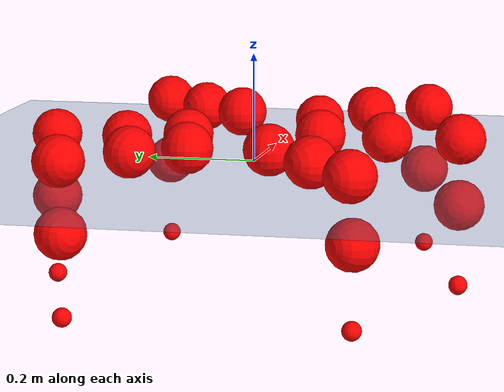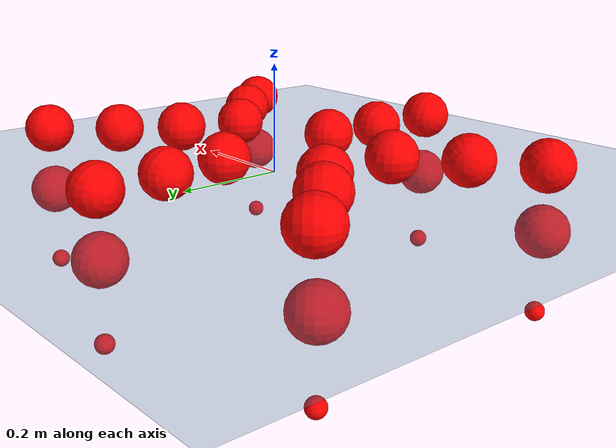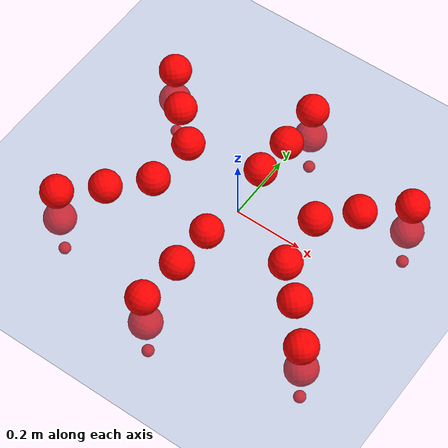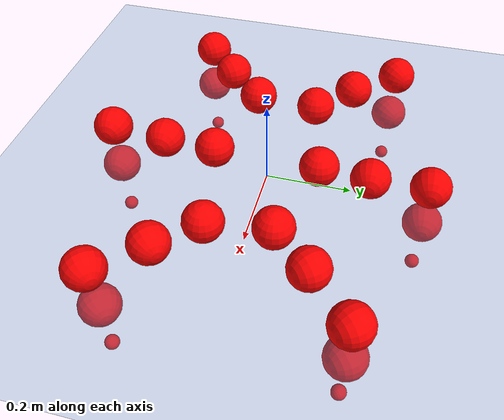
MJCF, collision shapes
<mujoco model="Golem">
  <compiler angle="radian" assetdir="assets" balanceinertia="true" inertiafromgeom="false"/>

  <option timestep="0.005" density="1.2" viscosity="2e-05"/>

  <size nkey="1"/>

  <visual>
    <quality shadowsize="8192"/>
    <map shadowclip="0.5"/>
  </visual>

  <default>
    <default class="/">
      <joint armature="0.01" damping="0.01" frictionloss="0.01"/>
      <geom contype="0" conaffinity="0" group="1" solref="-1000 -80"/>
      <site size="0.01 0.005 0.005" group="5"/>
      <general forcelimited="true" biastype="affine" gainprm="25" biasprm="0 -25 -0.5"/>
      <default class="visual">
        <geom type="mesh" group="2"/>
      </default>
      <default class="collision">
        <geom group="3"/>
      </default>
      <default class="foot">
        <geom size="0.01 0 0" condim="6" group="4" priority="1" solimp="0.015 1 0.01"/>
      </default>
      <default class="reward_collision_sphere">
        <geom group="5" rgba="1 0 0 1"/>
      </default>
    </default>
  </default>

  <asset>
    <texture type="skybox" colorspace="auto" name="//unnamed_texture_0" builtin="gradient" rgb1="0.95 0.95 0.95" rgb2="0.95 0.95 0.95" width="100" height="600"/>
    <texture type="2d" colorspace="auto" name="texplane" builtin="checker" rgb1="0.345 0.575 0.748" rgb2="0.345 0.575 0.748" markrgb="1 1 1" width="512" height="512"/>
    <material name="MatPlane" class="/" texture="texplane" texuniform="true" texrepeat="2 2" specular="0.9"/>
    <mesh name="body" class="/" file="body.stl" scale="0.001 0.001 0.001"/>
    <mesh name="coxa" class="/" file="coxa.stl" scale="0.001 0.001 0.001"/>
    <mesh name="femur" class="/" file="femur.stl" scale="0.001 0.001 0.001"/>
    <mesh name="tibia" class="/" file="tibia.stl" scale="0.001 0.001 0.001"/>
    <mesh name="tarsus" class="/" file="tarsus.stl" scale="0.001 0.001 0.001"/>
  </asset>

  <worldbody>
    <geom name="floor" class="/" size="100 100 0.125" type="plane" group="0" material="MatPlane"/>
    <light name="toplight_shadow" class="/" pos="0 0 5" dir="0.0990148 0.0990148 -0.990148" type="directional" ambient="0.04 0.04 0.04" diffuse="0.55 0.55 0.55" specular="0.12 0.12 0.12"/>
    <light name="toplight_fill" class="/" pos="0 0 5" dir="0.0990148 0.0990148 -0.990148" type="directional" castshadow="false" ambient="0.04 0.04 0.04" diffuse="0.3 0.3 0.3" specular="0.08 0.08 0.08"/>
    <body name="trunk" pos="-0.00666418 -0.00187771 -0.0012857" quat="1 -1.68801e-05 -1.09814e-06 -3.66667e-05">
      <inertial pos="0.00150999 0.00183184 -0.004863" quat="0.999976 0.00539714 -0.00400519 -0.00149467" mass="6.18176" diaginertia="0.0562073 0.0336455 0.00469702"/>
      <joint name="//unnamed_joint_0" type="free"/>
      <geom name="//unnamed_geom_1" class="/" pos="0 0 0.0549253" quat="1 0 0 0" type="mesh" rgba="0.9 0.9 0.9 1" mesh="body"/>
      <site name="imu" class="/" pos="0.151257 -0.026855 0.0917674" size="0.0116809"/>
      <camera name="track" class="/" pos="0 -2.5183 0" quat="0.707107 0.707107 0 0" mode="trackcom"/>
      <camera name="ego_camera" class="/" pos="0.1803 0 0.0858208" quat="-0.5 -0.5 0.5 0.5"/>
      <body name="coxa_RR" pos="-0.244494 -0.104731 0.061695" quat="0.382663 1.98218e-05 -0.000304728 -0.923888">
        <inertial pos="-0.000243183 0.00734555 0.000349151" quat="0.999874 0.0117648 0.0032398 0.0101778" mass="0.356521" diaginertia="0.0545567 0.0337391 0.00499612"/>
        <joint name="coxa_joint_RR" class="/" pos="0 0 0" axis="0.00196493 -0.000154094 -0.999998" stiffness="0.0309722" range="-3.12465 3.13218" armature="0.0142413" damping="0.00492113" frictionloss="0.0116632"/>
        <geom name="//unnamed_geom_2" class="/" type="mesh" rgba="0.2 0.2 0.2 1" mesh="coxa"/>
        <geom name="//unnamed_geom_3" class="reward_collision_sphere" size="0.0467237" pos="-0.0416077 0 0"/>
        <body name="femur_RR" pos="0.0883206 0.00131248 -0.00352298" quat="0.50011 -0.500083 0.499819 0.499988">
          <inertial pos="0.000688909 -0.00034304 -0.00103356" quat="0.999985 -0.0040875 0.0010229 -0.00338411" mass="0.318781" diaginertia="0.0514893 0.0322146 0.00418962"/>
          <joint name="femur_joint_RR" class="/" pos="0 0 0" axis="0.00562956 -0.00550132 -0.999969" stiffness="0.0286869" range="-3.03436 3.19887" armature="0.0107851" damping="0" frictionloss="0.00894291"/>
          <geom name="//unnamed_geom_4" class="/" type="mesh" rgba="0.9 0.9 0.9 1" mesh="femur"/>
          <geom name="//unnamed_geom_5" class="reward_collision_sphere" size="0.0467237"/>
          <body name="tibia_RR" pos="0.00413633 -0.129741 -0.00745689" quat="0.00159647 0.999994 0.0030697 -0.000922496">
            <inertial pos="0.00530348 -0.00196142 -0.0014845" quat="0.99998 -0.00527829 0.00346089 -0.000333159" mass="0.310176" diaginertia="0.0511158 0.031863 0.00490395"/>
            <joint name="tibia_joint_RR" class="/" pos="0 0 0" axis="-0.00595065 0.025044 0.999669" range="-3.14586 3.09622" armature="0.0104432" damping="0.00992223" frictionloss="0.0117028"/>
            <geom name="//unnamed_geom_6" class="/" type="mesh" rgba="0.2 0.2 0.2 1" mesh="tibia"/>
            <geom name="//unnamed_geom_7" class="reward_collision_sphere" size="0.0467237"/>
            <body name="tarsus_RR" pos="0.117934 0.00229232 -0.00493828" quat="1 0.000133514 7.86646e-05 3.74344e-05">
              <inertial pos="0.0782912 -0.000114112 -0.000491455" quat="0.500132 0.493539 0.502821 0.503446" mass="0.314323" diaginertia="0.0527695 0.0317745 0.00457532"/>
              <joint name="tarsus_joint_RR" class="/" pos="0 0 0" axis="-0.00166104 0.00684479 0.999975" range="-3.03568 3.08986" armature="0.0108596" damping="0.0428866" frictionloss="0.012092"/>
              <geom name="//unnamed_geom_8" class="/" type="mesh" rgba="0.9 0.9 0.9 1" mesh="tarsus"/>
              <geom name="foot_1" class="foot" size="0.011693" pos="0.155335 0 0" quat="0 -0.707107 0 0.707107"/>
              <geom name="//unnamed_geom_10" class="reward_collision_sphere" size="0.0467237"/>
              <geom name="//unnamed_geom_11" class="reward_collision_sphere" size="0.0175214" pos="0.149094 0 0"/>
              <site name="foot_1" class="foot" pos="0.155335 0 0" quat="0 -0.707107 0 0.707107" size="0.0116809"/>
            </body>
          </body>
        </body>
      </body>
      <body name="coxa_RM" pos="-0.00144496 -0.167588 0.0565577" quat="0.707629 0.000135109 -0.000843055 -0.706584">
        <inertial pos="-0.00338237 -0.000369099 0.00055663" quat="0.999998 0.000984572 0.000651553 0.00180056" mass="0.322602" diaginertia="0.0525475 0.0347483 0.00453657"/>
        <joint name="coxa_joint_RM" class="/" pos="0 0 0" axis="0.00460551 -0.00651181 -0.999968" range="-3.14758 3.17548" armature="0.0116022" damping="0.0271372" frictionloss="0.016575"/>
        <geom name="//unnamed_geom_12" class="/" type="mesh" rgba="0.2 0.2 0.2 1" mesh="coxa"/>
        <geom name="//unnamed_geom_13" class="reward_collision_sphere" size="0.0467237" pos="-0.0416077 0 0"/>
        <body name="femur_RM" pos="0.0833196 -0.00479293 4.39804e-05" quat="0.497998 -0.500527 0.502219 0.499245">
          <inertial pos="0.00170717 -9.8143e-05 -0.000259901" quat="0.999995 -0.00282188 -0.000480563 0.00126885" mass="0.283461" diaginertia="0.0467501 0.0303208 0.00423686"/>
          <joint name="femur_joint_RM" class="/" pos="0 0 0" axis="-0.00876254 0.0041051 -0.999953" range="-3.09635 3.15329" armature="0.0120243" damping="0" frictionloss="0.011851"/>
          <geom name="//unnamed_geom_14" class="/" type="mesh" rgba="0.9 0.9 0.9 1" mesh="femur"/>
          <geom name="//unnamed_geom_15" class="reward_collision_sphere" size="0.0467237"/>
          <body name="tibia_RM" pos="-0.00282875 -0.136394 -0.00718068" quat="0.000291796 1 -0.000458049 0.000491167">
            <inertial pos="-0.00279548 0.00711387 0.00151473" quat="0.999615 -0.0223062 -0.00463997 0.0158379" mass="0.33768" diaginertia="0.0505212 0.0285134 0.00450047"/>
            <joint name="tibia_joint_RM" class="/" pos="0 0 0" axis="0.000437747 0.00473385 0.999989" range="-3.02807 2.97283" armature="0.0118474" damping="0.0179916" frictionloss="0.0127074"/>
            <geom name="//unnamed_geom_16" class="/" type="mesh" rgba="0.2 0.2 0.2 1" mesh="tibia"/>
            <geom name="//unnamed_geom_17" class="reward_collision_sphere" size="0.0467237"/>
            <body name="tarsus_RM" pos="0.122336 -0.0014776 -0.0024723" quat="1 0.000232371 4.83102e-05 9.57863e-05">
              <inertial pos="0.0855894 0.00273841 -0.00366308" quat="0.50473 0.473576 0.498067 0.522401" mass="0.293022" diaginertia="0.0550755 0.0326163 0.00492266"/>
              <joint name="tarsus_joint_RM" class="/" pos="0 0 0" axis="0.000377584 0.00630548 0.99998" stiffness="0.0121645" range="-3.1862 3.11088" armature="0.0116825" damping="0" frictionloss="0.0115077"/>
              <geom name="//unnamed_geom_18" class="/" type="mesh" rgba="0.9 0.9 0.9 1" mesh="tarsus"/>
              <geom name="foot_2" class="foot" size="0.0123087" pos="0.155335 0 0" quat="0 -0.707107 0 0.707107"/>
              <geom name="//unnamed_geom_20" class="reward_collision_sphere" size="0.0467237"/>
              <geom name="//unnamed_geom_21" class="reward_collision_sphere" size="0.0175214" pos="0.149094 0 0"/>
              <site name="foot_2" class="foot" pos="0.155335 0 0" quat="0 -0.707107 0 0.707107" size="0.0116809"/>
            </body>
          </body>
        </body>
      </body>
      <body name="coxa_RF" pos="0.249003 -0.111535 0.0497202" quat="0.923963 -0.000492226 -0.00157608 -0.382478">
        <inertial pos="-0.000907822 -0.00137616 0.00159753" quat="0.999996 0.0027839 0.000479519 -0.000302679" mass="0.327316" diaginertia="0.0512476 0.0327137 0.00478279"/>
        <joint name="coxa_joint_RF" class="/" pos="0 0 0" axis="-4.41835e-05 0.000624184 -1" stiffness="0.01045" range="-3.10808 3.17071" armature="0.00886634" damping="0.0318162" frictionloss="0.0128526"/>
        <geom name="//unnamed_geom_22" class="/" type="mesh" rgba="0.2 0.2 0.2 1" mesh="coxa"/>
        <geom name="//unnamed_geom_23" class="reward_collision_sphere" size="0.0467237" pos="-0.0416077 0 0"/>
        <body name="femur_RF" pos="0.0806653 0.00125166 0.00669689" quat="0.500136 -0.499765 0.499956 0.500143">
          <inertial pos="5.3609e-05 0.00242278 0.00188339" quat="1 -0.000320688 0.00033398 0.000546903" mass="0.318846" diaginertia="0.0513162 0.03273 0.00433805"/>
          <joint name="femur_joint_RF" class="/" pos="0 0 0" axis="0.0011346 -0.00180163 -0.999998" range="-2.99983 3.15904" armature="0.0148459" damping="0.00611959" frictionloss="0.00935721"/>
          <geom name="//unnamed_geom_24" class="/" type="mesh" rgba="0.9 0.9 0.9 1" mesh="femur"/>
          <geom name="//unnamed_geom_25" class="reward_collision_sphere" size="0.0467237"/>
          <body name="tibia_RF" pos="0.00396994 -0.133414 -0.00780942" quat="-0.000601772 1 0.000445283 0.000314305">
            <inertial pos="0.00744664 -0.00155059 -0.0020638" quat="1 -8.18015e-06 8.33547e-05 -0.000103473" mass="0.301615" diaginertia="0.0537619 0.0314848 0.00488021"/>
            <joint name="tibia_joint_RF" class="/" pos="0 0 0" axis="0.00787389 -0.0344616 0.999375" range="-3.17027 3.28102" armature="0.0114259" damping="0.0194828" frictionloss="0.0115141"/>
            <geom name="//unnamed_geom_26" class="/" type="mesh" rgba="0.2 0.2 0.2 1" mesh="tibia"/>
            <geom name="//unnamed_geom_27" class="reward_collision_sphere" size="0.0467237"/>
            <body name="tarsus_RF" pos="0.123356 -0.00628071 -0.00480885" quat="0.999995 0.000858852 -3.89842e-05 0.00307532">
              <inertial pos="0.0831216 0.00201695 0.000650413" quat="0.500965 0.500299 0.493797 0.504876" mass="0.307252" diaginertia="0.052183 0.0305944 0.00451306"/>
              <joint name="tarsus_joint_RF" class="/" pos="0 0 0" axis="-0.0104269 0.000392476 0.999946" stiffness="0.00157362" range="-3.14453 3.10743" armature="0.0105719" damping="0.000803052" frictionloss="0.012249"/>
              <geom name="//unnamed_geom_28" class="/" type="mesh" rgba="0.9 0.9 0.9 1" mesh="tarsus"/>
              <geom name="foot_3" class="foot" size="0.0100496" pos="0.155335 0 0" quat="0 -0.707107 0 0.707107"/>
              <geom name="//unnamed_geom_30" class="reward_collision_sphere" size="0.0467237"/>
              <geom name="//unnamed_geom_31" class="reward_collision_sphere" size="0.0175214" pos="0.149094 0 0"/>
              <site name="foot_3" class="foot" pos="0.155335 0 0" quat="0 -0.707107 0 0.707107" size="0.0116809"/>
            </body>
          </body>
        </body>
      </body>
      <body name="coxa_LR" pos="-0.239742 0.104088 0.0592277" quat="0.382538 -0.000582387 0.000670067 0.923939">
        <inertial pos="0.00618261 -0.00101281 0.00799754" quat="0.999365 0.0262909 -0.00491402 0.0235441" mass="0.316338" diaginertia="0.0499868 0.0272131 0.00451308"/>
        <joint name="coxa_joint_LR" class="/" pos="0 0 0" axis="-0.0161259 -0.0274916 -0.999492" range="-3.16543 3.1632" armature="0.0127318" damping="0" frictionloss="0.0141825"/>
        <geom name="//unnamed_geom_32" class="/" type="mesh" rgba="0.2 0.2 0.2 1" mesh="coxa"/>
        <geom name="//unnamed_geom_33" class="reward_collision_sphere" size="0.0467237" pos="-0.0416077 0 0"/>
        <body name="femur_LR" pos="0.0786282 0.00330186 0.00409079" quat="0.500204 -0.499851 0.499853 0.500092">
          <inertial pos="-0.000335667 0.0020823 -0.00202571" quat="0.999973 0.00126461 -0.00368578 0.00616512" mass="0.319358" diaginertia="0.0521789 0.0303136 0.0045947"/>
          <joint name="femur_joint_LR" class="/" pos="0 0 0" axis="-0.00226671 -0.00948687 0.999952" range="-3.11561 3.09905" armature="0.0127805" damping="0.0173429" frictionloss="0.0161149"/>
          <geom name="//unnamed_geom_34" class="/" type="mesh" rgba="0.9 0.9 0.9 1" mesh="femur"/>
          <geom name="//unnamed_geom_35" class="reward_collision_sphere" size="0.0467237"/>
          <body name="tibia_LR" pos="0.00343779 -0.138314 -0.00526236" quat="0.000656155 0.999996 0.00283102 0.000615693">
            <inertial pos="0.001496 0.00194218 0.000580774" quat="0.999941 -0.00909594 -0.00257774 0.00542842" mass="0.318673" diaginertia="0.0518995 0.0308047 0.00447367"/>
            <joint name="tibia_joint_LR" class="/" pos="0 0 0" axis="0.00828376 -0.000817296 -0.999965" stiffness="0.00753883" range="-3.11743 3.22326" armature="0.0105571" damping="0" frictionloss="0.0128939"/>
            <geom name="//unnamed_geom_36" class="/" type="mesh" rgba="0.2 0.2 0.2 1" mesh="tibia"/>
            <geom name="//unnamed_geom_37" class="reward_collision_sphere" size="0.0467237"/>
            <body name="tarsus_LR" pos="0.127209 0.000666063 -0.00406513" quat="0.999995 -0.000327316 -0.000324953 0.00318566">
              <inertial pos="0.0756053 0.000127902 0.00732952" quat="0.500266 0.500084 0.499508 0.500142" mass="0.332162" diaginertia="0.0517882 0.033381 0.00458781"/>
              <joint name="tarsus_joint_LR" class="/" pos="0 0 0" axis="0.0169837 0.0220918 -0.999612" range="-3.04354 3.23525" armature="0.0129971" damping="0.0102655" frictionloss="0.012053"/>
              <geom name="//unnamed_geom_38" class="/" type="mesh" rgba="0.9 0.9 0.9 1" mesh="tarsus"/>
              <geom name="foot_4" class="foot" size="0.0109133" pos="0.155335 0 0" quat="0.707107 0 -0.707107 0"/>
              <geom name="//unnamed_geom_40" class="reward_collision_sphere" size="0.0467237"/>
              <geom name="//unnamed_geom_41" class="reward_collision_sphere" size="0.0175214" pos="0.149094 0 0"/>
              <site name="foot_4" class="foot" pos="0.155335 0 0" quat="0.707107 0 -0.707107 0" size="0.0116809"/>
            </body>
          </body>
        </body>
      </body>
      <body name="coxa_LM" pos="-0.00410352 0.16515 0.050152" quat="0.706981 3.55539e-05 5.84533e-05 0.707233">
        <inertial pos="0.00173783 -0.000686111 0.00363961" quat="0.999924 -0.00507413 -0.0109281 0.00242843" mass="0.31717" diaginertia="0.0518098 0.0323112 0.00466074"/>
        <joint name="coxa_joint_LM" class="/" pos="0 0 0" axis="0.000401419 0.0111634 -0.999938" stiffness="0.011606" range="-3.23367 3.17997" armature="0.011472" damping="0" frictionloss="0.00922093"/>
        <geom name="//unnamed_geom_42" class="/" type="mesh" rgba="0.2 0.2 0.2 1" mesh="coxa"/>
        <geom name="//unnamed_geom_43" class="reward_collision_sphere" size="0.0467237" pos="-0.0416077 0 0"/>
        <body name="femur_LM" pos="0.0773744 -0.00280423 -0.00701629" quat="0.501269 -0.499115 0.500155 0.499459">
          <inertial pos="-0.00068364 0.00478429 -0.00779372" quat="0.999458 0.00574697 -0.0266222 -0.0185182" mass="0.324956" diaginertia="0.0514782 0.0355415 0.00476008"/>
          <joint name="femur_joint_LM" class="/" pos="0 0 0" axis="0.00825317 -0.00812635 0.999933" range="-3.15366 3.22599" armature="0.0107687" damping="0.0218989" frictionloss="0.0114472"/>
          <geom name="//unnamed_geom_44" class="/" type="mesh" rgba="0.9 0.9 0.9 1" mesh="femur"/>
          <geom name="//unnamed_geom_45" class="reward_collision_sphere" size="0.0467237"/>
          <body name="tibia_LM" pos="0.000852491 -0.134323 0.00520762" quat="0.00154164 0.999992 -0.0032469 -0.00152016">
            <inertial pos="0.00129961 0.00804399 0.000913259" quat="0.999915 0.00965636 -0.00248695 0.00841362" mass="0.317062" diaginertia="0.0518699 0.0294522 0.00470721"/>
            <joint name="tibia_joint_LM" class="/" pos="0 0 0" axis="0.00662636 0.00777718 -0.999948" stiffness="0.00150838" range="-3.13643 3.15841" armature="0.00860442" damping="0.0439664" frictionloss="0.0124106"/>
            <geom name="//unnamed_geom_46" class="/" type="mesh" rgba="0.2 0.2 0.2 1" mesh="tibia"/>
            <geom name="//unnamed_geom_47" class="reward_collision_sphere" size="0.0467237"/>
            <body name="tarsus_LM" pos="0.118084 -0.000138895 -0.00227999" quat="0.999991 -0.0032526 0.00181958 0.00187052">
              <inertial pos="0.0861701 -0.00102643 0.00129975" quat="0.500534 0.500232 0.499523 0.499711" mass="0.336986" diaginertia="0.0561125 0.0338875 0.00487673"/>
              <joint name="tarsus_joint_LM" class="/" pos="0 0 0" axis="0.00528025 0.000180909 -0.999986" stiffness="0.0234523" range="-3.29378 3.16924" armature="0.00831895" damping="0.0478748" frictionloss="0.0117562"/>
              <geom name="//unnamed_geom_48" class="/" type="mesh" rgba="0.9 0.9 0.9 1" mesh="tarsus"/>
              <geom name="foot_5" class="foot" size="0.0119331" pos="0.155335 0 0" quat="0.707107 0 -0.707107 0"/>
              <geom name="//unnamed_geom_50" class="reward_collision_sphere" size="0.0467237"/>
              <geom name="//unnamed_geom_51" class="reward_collision_sphere" size="0.0175214" pos="0.149094 0 0"/>
              <site name="foot_5" class="foot" pos="0.155335 0 0" quat="0.707107 0 -0.707107 0" size="0.0116809"/>
            </body>
          </body>
        </body>
      </body>
      <body name="coxa_LF" pos="0.239053 0.0981259 0.0617252" quat="0.924206 0.000683313 -0.000146191 0.381893">
        <inertial pos="-0.00103949 0.00187393 -0.000142966" quat="0.999889 0.00701042 0.00570763 -0.011876" mass="0.353767" diaginertia="0.0571167 0.0345254 0.00491829"/>
        <joint name="coxa_joint_LF" class="/" pos="0 0 0" axis="0.00259302 -0.00171596 -0.999995" stiffness="0.0286719" range="-3.13349 2.98615" armature="0.00868981" damping="0.0490444" frictionloss="0.013291"/>
        <geom name="//unnamed_geom_52" class="/" type="mesh" rgba="0.2 0.2 0.2 1" mesh="coxa"/>
        <geom name="//unnamed_geom_53" class="reward_collision_sphere" size="0.0467237" pos="-0.0416077 0 0"/>
        <body name="femur_LF" pos="0.0799463 0.00659862 -0.00407977" quat="0.497724 -0.501111 0.501663 0.499493">
          <inertial pos="-0.00740748 -0.000956021 0.00185459" quat="0.999974 -0.00720931 0.00019372 0.000967245" mass="0.305491" diaginertia="0.0500668 0.0309022 0.00471834"/>
          <joint name="femur_joint_LF" class="/" pos="0 0 0" axis="-0.00430941 -0.002553 0.999987" range="-3.18442 3.17978" armature="0.00871002" damping="0" frictionloss="0.0107563"/>
          <geom name="//unnamed_geom_54" class="/" type="mesh" rgba="0.9 0.9 0.9 1" mesh="femur"/>
          <geom name="//unnamed_geom_55" class="reward_collision_sphere" size="0.0467237"/>
          <body name="tibia_LF" pos="0.00368333 -0.142192 -0.00230043" quat="-0.000466594 0.999999 -0.000865512 0.000426984">
            <inertial pos="-0.000403803 -0.00354151 -0.00022131" quat="0.999979 -0.00525201 0.00347808 0.00167371" mass="0.323492" diaginertia="0.0509114 0.0327357 0.00464888"/>
            <joint name="tibia_joint_LF" class="/" pos="0 0 0" axis="-0.0061907 -0.00326548 -0.999976" stiffness="0.0121401" range="-3.13641 3.17992" armature="0.0130652" damping="0.0224603" frictionloss="0.0111122"/>
            <geom name="//unnamed_geom_56" class="/" type="mesh" rgba="0.2 0.2 0.2 1" mesh="tibia"/>
            <geom name="//unnamed_geom_57" class="reward_collision_sphere" size="0.0467237"/>
            <body name="tarsus_LF" pos="0.12404 -0.00351281 -0.00391022" quat="0.999994 0.00102427 -0.000427738 -0.00313777">
              <inertial pos="0.0845854 0.00281233 0.000787017" quat="0.506511 0.496132 0.488091 0.508987" mass="0.318779" diaginertia="0.0535158 0.0304631 0.00467923"/>
              <joint name="tarsus_joint_LF" class="/" pos="0 0 0" axis="0.00372929 -0.00123448 -0.999992" range="-3.06122 3.12374" armature="0.0117456" damping="0.0460109" frictionloss="0.0104762"/>
              <geom name="//unnamed_geom_58" class="/" type="mesh" rgba="0.9 0.9 0.9 1" mesh="tarsus"/>
              <geom name="foot_6" class="foot" size="0.0118125" pos="0.155335 0 0" quat="0.707107 0 -0.707107 0"/>
              <geom name="//unnamed_geom_60" class="reward_collision_sphere" size="0.0467237"/>
              <geom name="//unnamed_geom_61" class="reward_collision_sphere" size="0.0175214" pos="0.149094 0 0"/>
              <site name="foot_6" class="foot" pos="0.155335 0 0" quat="0.707107 0 -0.707107 0" size="0.0116809"/>
            </body>
          </body>
        </body>
      </body>
    </body>
  </worldbody>

  <contact>
    <pair class="/" geom1="floor" geom2="foot_1" name="//unnamed_contact_0"/>
    <pair class="/" geom1="floor" geom2="foot_2" name="//unnamed_contact_1"/>
    <pair class="/" geom1="floor" geom2="foot_3" name="//unnamed_contact_2"/>
    <pair class="/" geom1="floor" geom2="foot_4" name="//unnamed_contact_3"/>
    <pair class="/" geom1="floor" geom2="foot_5" name="//unnamed_contact_4"/>
    <pair class="/" geom1="floor" geom2="foot_6" name="//unnamed_contact_5"/>
  </contact>

  <actuator>
    <general name="coxa_joint_RR" class="/" joint="coxa_joint_RR" forcerange="-9.25633 9.25633" gainprm="28.0743" biasprm="0 -28.0743 -0.542972"/>
    <general name="femur_joint_RR" class="/" joint="femur_joint_RR" forcerange="-8.74646 8.74646" gainprm="28.0743" biasprm="0 -28.0743 -0.542972"/>
    <general name="tibia_joint_RR" class="/" joint="tibia_joint_RR" forcerange="-8.51882 8.51882" gainprm="28.0743" biasprm="0 -28.0743 -0.542972"/>
    <general name="tarsus_joint_RR" class="/" joint="tarsus_joint_RR" forcerange="-7.32032 7.32032" gainprm="28.0743" biasprm="0 -28.0743 -0.542972"/>
    <general name="coxa_joint_RM" class="/" joint="coxa_joint_RM" forcerange="-10.8033 10.8033" gainprm="28.0743" biasprm="0 -28.0743 -0.542972"/>
    <general name="femur_joint_RM" class="/" joint="femur_joint_RM" forcerange="-7.89678 7.89678" gainprm="28.0743" biasprm="0 -28.0743 -0.542972"/>
    <general name="tibia_joint_RM" class="/" joint="tibia_joint_RM" forcerange="-9.21691 9.21691" gainprm="28.0743" biasprm="0 -28.0743 -0.542972"/>
    <general name="tarsus_joint_RM" class="/" joint="tarsus_joint_RM" forcerange="-9.23544 9.23544" gainprm="28.0743" biasprm="0 -28.0743 -0.542972"/>
    <general name="coxa_joint_RF" class="/" joint="coxa_joint_RF" forcerange="-10.5465 10.5465" gainprm="28.0743" biasprm="0 -28.0743 -0.542972"/>
    <general name="femur_joint_RF" class="/" joint="femur_joint_RF" forcerange="-8.98517 8.98517" gainprm="28.0743" biasprm="0 -28.0743 -0.542972"/>
    <general name="tibia_joint_RF" class="/" joint="tibia_joint_RF" forcerange="-10.9712 10.9712" gainprm="28.0743" biasprm="0 -28.0743 -0.542972"/>
    <general name="tarsus_joint_RF" class="/" joint="tarsus_joint_RF" forcerange="-8.17725 8.17725" gainprm="28.0743" biasprm="0 -28.0743 -0.542972"/>
    <general name="coxa_joint_LR" class="/" joint="coxa_joint_LR" forcerange="-8.63334 8.63334" gainprm="28.0743" biasprm="0 -28.0743 -0.542972"/>
    <general name="femur_joint_LR" class="/" joint="femur_joint_LR" forcerange="-9.06054 9.06054" gainprm="28.0743" biasprm="0 -28.0743 -0.542972"/>
    <general name="tibia_joint_LR" class="/" joint="tibia_joint_LR" forcerange="-7.99307 7.99307" gainprm="28.0743" biasprm="0 -28.0743 -0.542972"/>
    <general name="tarsus_joint_LR" class="/" joint="tarsus_joint_LR" forcerange="-8.7149 8.7149" gainprm="28.0743" biasprm="0 -28.0743 -0.542972"/>
    <general name="coxa_joint_LM" class="/" joint="coxa_joint_LM" forcerange="-7.05727 7.05727" gainprm="28.0743" biasprm="0 -28.0743 -0.542972"/>
    <general name="femur_joint_LM" class="/" joint="femur_joint_LM" forcerange="-8.63037 8.63037" gainprm="28.0743" biasprm="0 -28.0743 -0.542972"/>
    <general name="tibia_joint_LM" class="/" joint="tibia_joint_LM" forcerange="-7.83993 7.83993" gainprm="28.0743" biasprm="0 -28.0743 -0.542972"/>
    <general name="tarsus_joint_LM" class="/" joint="tarsus_joint_LM" forcerange="-9.08257 9.08257" gainprm="28.0743" biasprm="0 -28.0743 -0.542972"/>
    <general name="coxa_joint_LF" class="/" joint="coxa_joint_LF" forcerange="-11.0698 11.0698" gainprm="28.0743" biasprm="0 -28.0743 -0.542972"/>
    <general name="femur_joint_LF" class="/" joint="femur_joint_LF" forcerange="-8.83058 8.83058" gainprm="28.0743" biasprm="0 -28.0743 -0.542972"/>
    <general name="tibia_joint_LF" class="/" joint="tibia_joint_LF" forcerange="-9.11001 9.11001" gainprm="28.0743" biasprm="0 -28.0743 -0.542972"/>
    <general name="tarsus_joint_LF" class="/" joint="tarsus_joint_LF" forcerange="-9.00205 9.00205" gainprm="28.0743" biasprm="0 -28.0743 -0.542972"/>
  </actuator>

  <sensor>
    <gyro site="imu" name="imu_angular_velocity"/>
    <velocimeter site="imu" name="imu_linear_velocity"/>
    <framelinvel objtype="site" objname="foot_1" name="foot_1_global_linear_velocity"/>
    <framelinvel objtype="site" objname="foot_2" name="foot_2_global_linear_velocity"/>
    <framelinvel objtype="site" objname="foot_3" name="foot_3_global_linear_velocity"/>
    <framelinvel objtype="site" objname="foot_4" name="foot_4_global_linear_velocity"/>
    <framelinvel objtype="site" objname="foot_5" name="foot_5_global_linear_velocity"/>
    <framelinvel objtype="site" objname="foot_6" name="foot_6_global_linear_velocity"/>
  </sensor>

  <keyframe>
    <key name="home" qpos="0 0 0.1457 1 0 0 0 0 0 0 0 0 0 0 0 0 0 0 0 0 0 0 0 0 0 0 0 0 0 0 0"/>
  </keyframe>
</mujoco>
